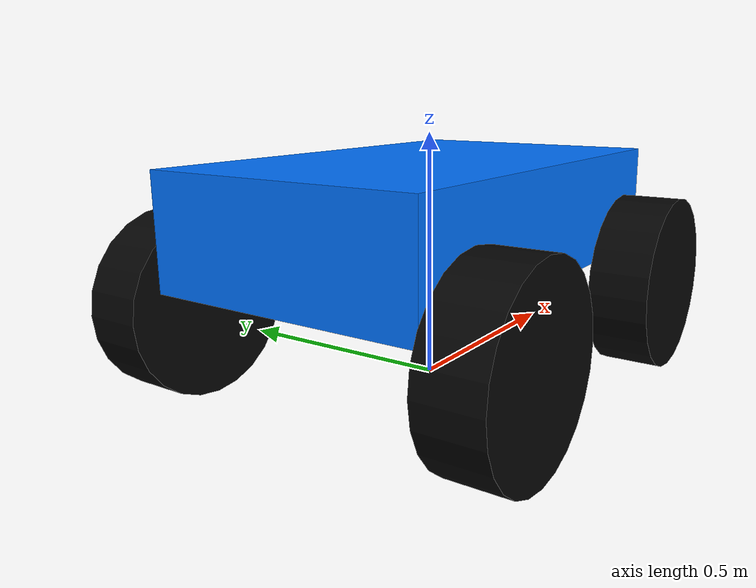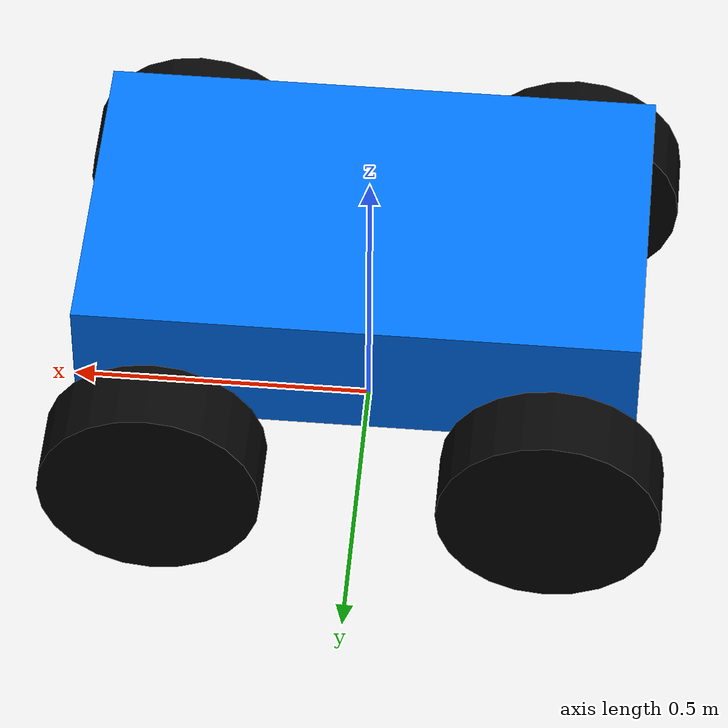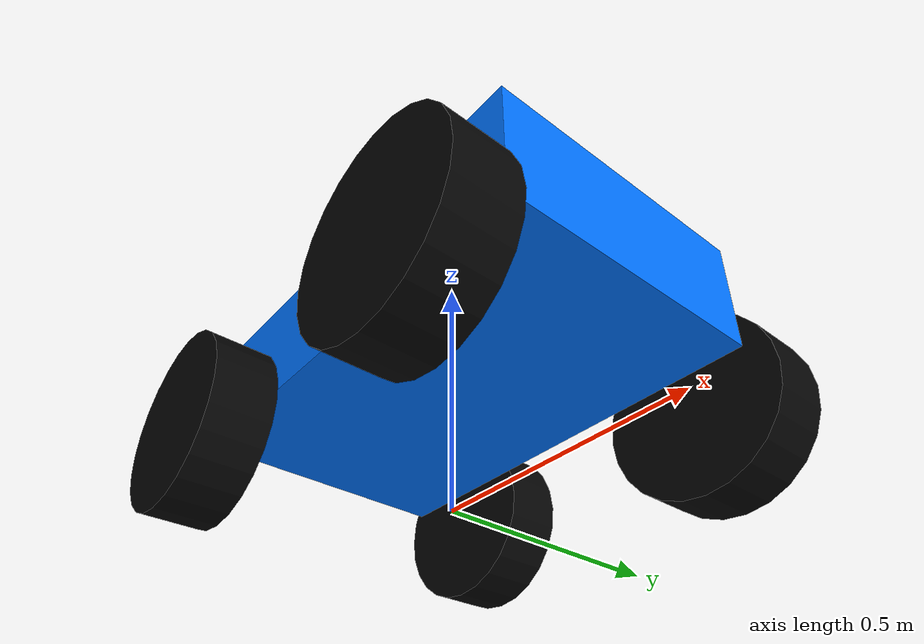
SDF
<?xml version="1.0" ?>
<sdf version="1.9">
  <model name="cosmo_rover">
    <!-- The rover is dynamic so the DiffDrive plugin can move it. -->
    <static>false</static>

    <!-- Main rectangular chassis. It is the parent link for the wheel joints. -->
    <link name="chassis">
      <pose>0 0 0.34 0 0 0</pose>
      <inertial>
        <mass>4.0</mass>
        <inertia>
          <ixx>0.12</ixx>
          <ixy>0.0</ixy>
          <ixz>0.0</ixz>
          <iyy>0.32</iyy>
          <iyz>0.0</iyz>
          <izz>0.38</izz>
        </inertia>
      </inertial>
      <collision name="chassis_collision">
        <geometry>
          <box>
            <size>0.9 0.55 0.22</size>
          </box>
        </geometry>
      </collision>
      <visual name="chassis_visual">
        <geometry>
          <box>
            <size>0.9 0.55 0.22</size>
          </box>
        </geometry>
        <material>
          <ambient>0.0 0.45 1.0 1</ambient>
          <diffuse>0.0 0.45 1.0 1</diffuse>
        </material>
      </visual>
    </link>

    <!-- Each wheel is a cylinder rotated so its axle is along the Y axis. -->
    <link name="front_left_wheel">
      <pose>0.32 0.35 0.18 1.5708 0 0</pose>
      <inertial>
        <mass>0.4</mass>
        <inertia>
          <ixx>0.004</ixx>
          <ixy>0.0</ixy>
          <ixz>0.0</ixz>
          <iyy>0.004</iyy>
          <iyz>0.0</iyz>
          <izz>0.006</izz>
        </inertia>
      </inertial>
      <collision name="collision">
        <geometry>
          <cylinder>
            <radius>0.18</radius>
            <length>0.12</length>
          </cylinder>
        </geometry>
      </collision>
      <visual name="visual">
        <geometry>
          <cylinder>
            <radius>0.18</radius>
            <length>0.12</length>
          </cylinder>
        </geometry>
        <material>
          <ambient>0.02 0.02 0.02 1</ambient>
          <diffuse>0.02 0.02 0.02 1</diffuse>
        </material>
      </visual>
    </link>

    <link name="front_right_wheel">
      <pose>0.32 -0.35 0.18 1.5708 0 0</pose>
      <inertial>
        <mass>0.4</mass>
        <inertia>
          <ixx>0.004</ixx>
          <ixy>0.0</ixy>
          <ixz>0.0</ixz>
          <iyy>0.004</iyy>
          <iyz>0.0</iyz>
          <izz>0.006</izz>
        </inertia>
      </inertial>
      <collision name="collision">
        <geometry>
          <cylinder>
            <radius>0.18</radius>
            <length>0.12</length>
          </cylinder>
        </geometry>
      </collision>
      <visual name="visual">
        <geometry>
          <cylinder>
            <radius>0.18</radius>
            <length>0.12</length>
          </cylinder>
        </geometry>
        <material>
          <ambient>0.02 0.02 0.02 1</ambient>
          <diffuse>0.02 0.02 0.02 1</diffuse>
        </material>
      </visual>
    </link>

    <link name="rear_left_wheel">
      <pose>-0.32 0.35 0.18 1.5708 0 0</pose>
      <inertial>
        <mass>0.4</mass>
        <inertia>
          <ixx>0.004</ixx>
          <ixy>0.0</ixy>
          <ixz>0.0</ixz>
          <iyy>0.004</iyy>
          <iyz>0.0</iyz>
          <izz>0.006</izz>
        </inertia>
      </inertial>
      <collision name="collision">
        <geometry>
          <cylinder>
            <radius>0.18</radius>
            <length>0.12</length>
          </cylinder>
        </geometry>
      </collision>
      <visual name="visual">
        <geometry>
          <cylinder>
            <radius>0.18</radius>
            <length>0.12</length>
          </cylinder>
        </geometry>
        <material>
          <ambient>0.02 0.02 0.02 1</ambient>
          <diffuse>0.02 0.02 0.02 1</diffuse>
        </material>
      </visual>
    </link>

    <link name="rear_right_wheel">
      <pose>-0.32 -0.35 0.18 1.5708 0 0</pose>
      <inertial>
        <mass>0.4</mass>
        <inertia>
          <ixx>0.004</ixx>
          <ixy>0.0</ixy>
          <ixz>0.0</ixz>
          <iyy>0.004</iyy>
          <iyz>0.0</iyz>
          <izz>0.006</izz>
        </inertia>
      </inertial>
      <collision name="collision">
        <geometry>
          <cylinder>
            <radius>0.18</radius>
            <length>0.12</length>
          </cylinder>
        </geometry>
      </collision>
      <visual name="visual">
        <geometry>
          <cylinder>
            <radius>0.18</radius>
            <length>0.12</length>
          </cylinder>
        </geometry>
        <material>
          <ambient>0.02 0.02 0.02 1</ambient>
          <diffuse>0.02 0.02 0.02 1</diffuse>
        </material>
      </visual>
    </link>

    <!-- Revolute wheel joints connect the wheels to the chassis. -->
    <joint name="front_left_wheel_joint" type="revolute">
      <parent>chassis</parent>
      <child>front_left_wheel</child>
      <axis>
        <xyz>0 1 0</xyz>
      </axis>
    </joint>

    <joint name="front_right_wheel_joint" type="revolute">
      <parent>chassis</parent>
      <child>front_right_wheel</child>
      <axis>
        <xyz>0 1 0</xyz>
      </axis>
    </joint>

    <joint name="rear_left_wheel_joint" type="revolute">
      <parent>chassis</parent>
      <child>rear_left_wheel</child>
      <axis>
        <xyz>0 1 0</xyz>
      </axis>
    </joint>

    <joint name="rear_right_wheel_joint" type="revolute">
      <parent>chassis</parent>
      <child>rear_right_wheel</child>
      <axis>
        <xyz>0 1 0</xyz>
      </axis>
    </joint>

    <!--
      Gazebo DiffDrive reads Twist commands on /cmd_vel.
      A ROS-Gazebo bridge in drive_rover.launch.py forwards ROS 2 /cmd_vel
      messages to this Gazebo topic.
    -->
    <plugin filename="gz-sim-diff-drive-system" name="gz::sim::systems::DiffDrive">
      <left_joint>front_left_wheel_joint</left_joint>
      <left_joint>rear_left_wheel_joint</left_joint>
      <right_joint>front_right_wheel_joint</right_joint>
      <right_joint>rear_right_wheel_joint</right_joint>
      <wheel_separation>0.7</wheel_separation>
      <wheel_radius>0.18</wheel_radius>
      <odom_publish_frequency>10</odom_publish_frequency>
      <max_linear_acceleration>1.0</max_linear_acceleration>
      <max_angular_acceleration>2.0</max_angular_acceleration>
      <topic>/cmd_vel</topic>
    </plugin>
  </model>
</sdf>
